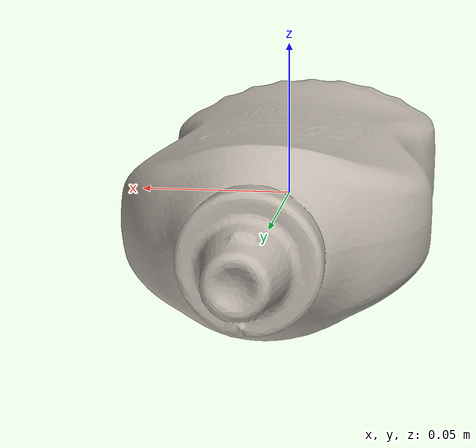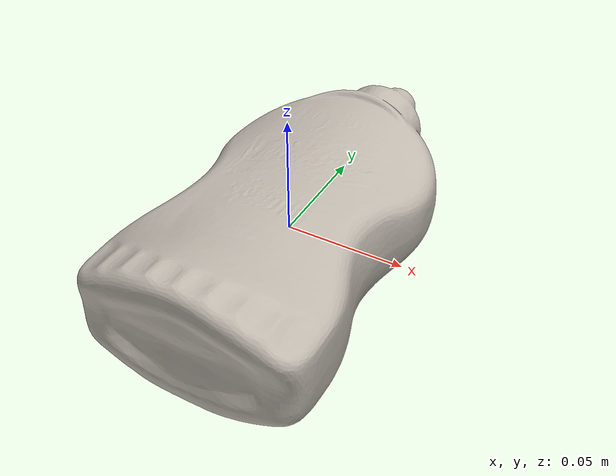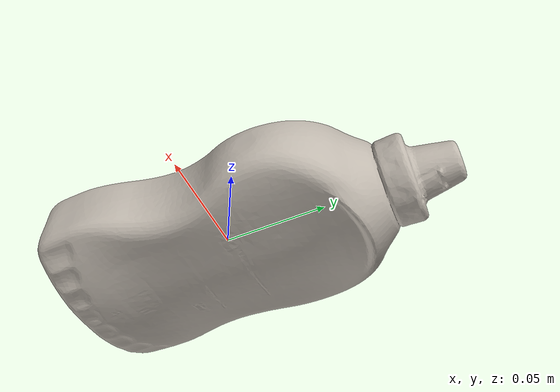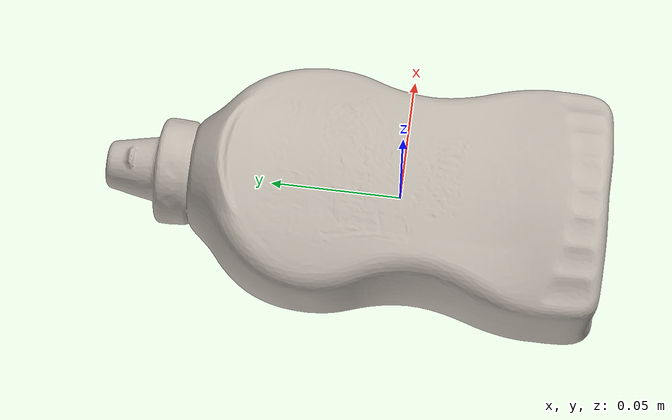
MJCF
<mujoco model="mustard_bottle_flipped">
  <compiler angle="radian" />

  <asset>
    <mesh name="mustard_bottle_flipped_visual_mesh" file="mustard_bottle_flipped/textured.obj" />
    <mesh name="mustard_bottle_flipped_collision_mesh_0" file="mustard_bottle_flipped/textured_coacd_0.stl" />
    <mesh name="mustard_bottle_flipped_collision_mesh_1" file="mustard_bottle_flipped/textured_coacd_1.stl" />
    <mesh name="mustard_bottle_flipped_collision_mesh_2" file="mustard_bottle_flipped/textured_coacd_2.stl" />
    <texture name="mustard_bottle_flipped_texture" type="2d" file="mustard_bottle_flipped/texture_map.png" />
    <material name="mustard_bottle_flipped_material" texture="mustard_bottle_flipped_texture" />
  </asset>

  <worldbody>
    <body name="mustard_bottle_flipped" pos="0 0 0" euler="0 0 0">
      <freejoint name="mustard_bottle_flipped_joint" />
      <geom name="mustard_bottle_flipped_visual_geom" type="mesh" mesh="mustard_bottle_flipped_visual_mesh" material="mustard_bottle_flipped_material" pos="-0.014324160907744188 -0.07504229718762659 0.023347281696173804" euler="0 0 0" contype="0" conaffinity="0" group="0" />
      <geom name="mustard_bottle_flipped_collision_geom_0" type="mesh" mesh="mustard_bottle_flipped_collision_mesh_0" pos="-0.014324160907744188 -0.07504229718762659 0.023347281696173804" euler="0 0 0" contype="1" conaffinity="1" group="3" />
      <geom name="mustard_bottle_flipped_collision_geom_1" type="mesh" mesh="mustard_bottle_flipped_collision_mesh_1" pos="-0.014324160907744188 -0.07504229718762659 0.023347281696173804" euler="0 0 0" contype="1" conaffinity="1" group="3" />
      <geom name="mustard_bottle_flipped_collision_geom_2" type="mesh" mesh="mustard_bottle_flipped_collision_mesh_2" pos="-0.014324160907744188 -0.07504229718762659 0.023347281696173804" euler="0 0 0" contype="1" conaffinity="1" group="3" />
      <inertial pos="0 0 0" euler="0 0 0" mass="0.603" diaginertia="0.001 0.001 0.001" />
    </body>
  </worldbody>
</mujoco>
